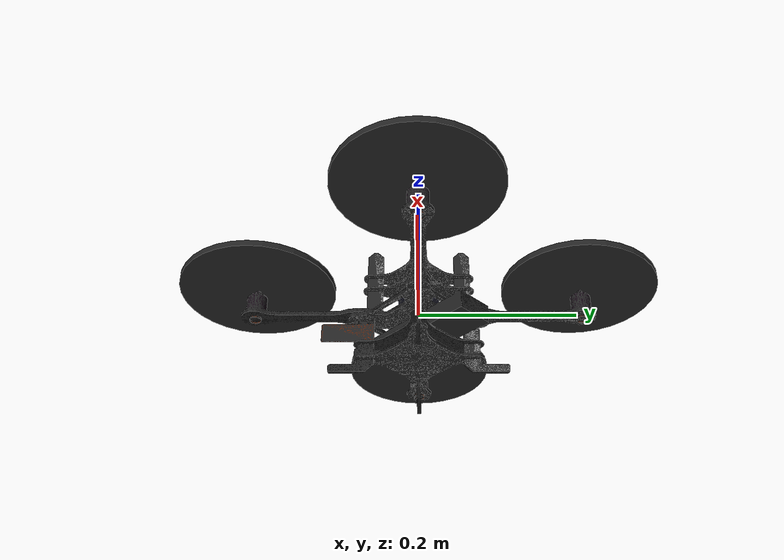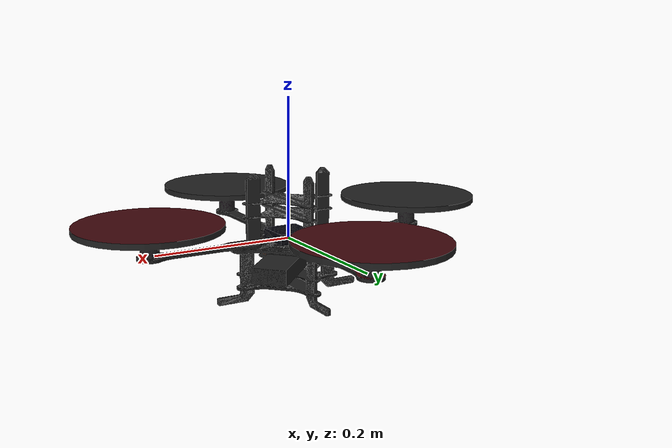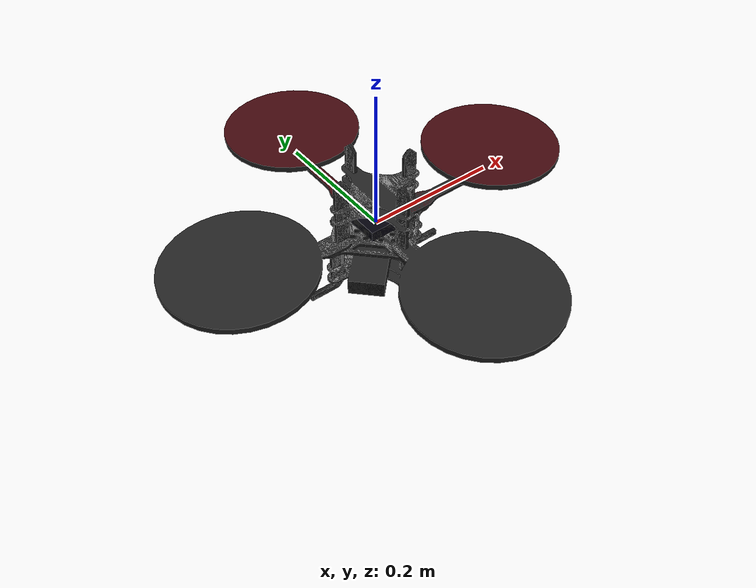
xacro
<?xml version="1.0"?>

<robot name="quadrotor" xmlns:xacro="http://ros.org/wiki/xacro">
  <xacro:property name="mass" value="0.5" />
  <xacro:property name="ixx" value="0.00264" />
  <xacro:property name="iyy" value="0.00264" />
  <xacro:property name="izz" value="0.00496" />
  <!-- Main quadrotor link -->
  <xacro:macro name="quadrotor_base_macro">
    <link name="base_link">
      <inertial>
        <mass value="${mass}"/>
        <origin xyz="0 0 0" />
        <inertia ixx="${ixx}" ixy="0.0" ixz="0.0" iyy="${iyy}" iyz="0.0" izz="${izz}" />
      </inertial>

      <visual>
        <origin xyz="0 0 0" rpy="0 0 0" />
        <geometry>
          <mesh filename="package://aizo_models/models/pelican/pelican_without_frame.dae"/>
        </geometry>
      </visual>
      <collision>
        <origin xyz="0 0 0" rpy="0 0 0" />
        <geometry>
          <cylinder radius="0.05" length="0.1"/>
        </geometry>
      </collision>
    </link>

    <!-- Plugins -->
    <gazebo>
      <!-- Quad Dynamics Plugin -->
      <plugin name="quadrotor_propulsion" filename="libmrsl_quadrotor_propulsion.so">
        <command_topic>so3_cmd</command_topic>
        <odom_topic>ground_truth/odom</odom_topic>
      </plugin>

      <!-- Quad Ground Truth Plugin -->
      <plugin name="quadrotor_groundtruth_sim" filename="libgazebo_ros_p3d.so">
        <updateRate>100.0</updateRate>
        <bodyName>base_link</bodyName>
        <topicName>ground_truth/odom</topicName>
        <gaussianNoise>0.0</gaussianNoise>
        <frameName>world</frameName>
      </plugin>

     </gazebo>
  </xacro:macro>

  <xacro:quadrotor_base_macro/>
</robot>
